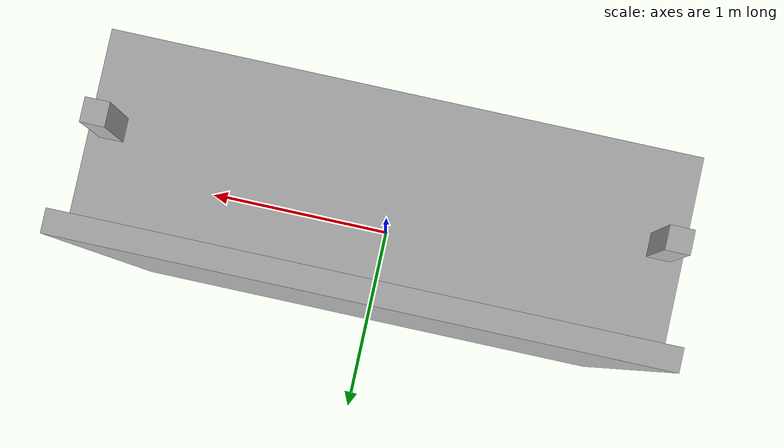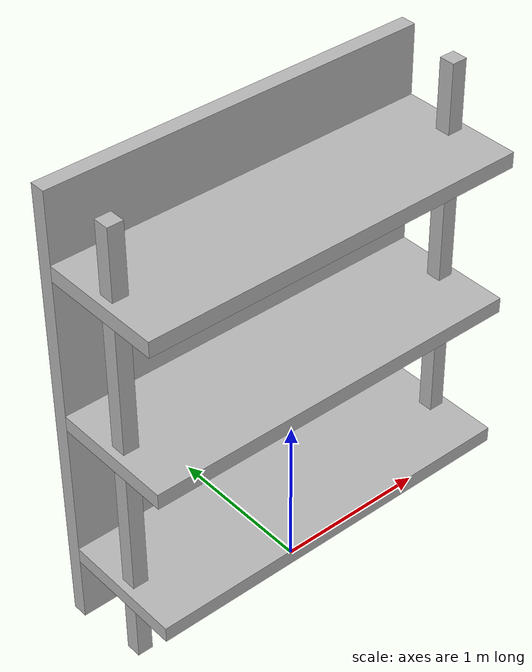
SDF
<?xml version="1.0"?>

<sdf version="1.10">

  <model name="shelf">

    <static>false</static>

    <link name="shelf_link">

      <!-- BACK FRAME                         -->

      <visual name="back_visual">

        <pose>0 0.45 1.5 0 0 0</pose>

        <geometry>
          <box>
            <size>2.5 0.1 3.0</size>
          </box>
        </geometry>

      </visual>

      <collision name="back_collision">

        <pose>0 0.45 1.5 0 0 0</pose>

        <geometry>
          <box>
            <size>2.5 0.1 3.0</size>
          </box>
        </geometry>

      </collision>

      <!-- SHELF 1                            -->

      <visual name="shelf_1_visual">

        <pose>0 0 0.5 0 0 0</pose>

        <geometry>
          <box>
            <size>2.5 0.8 0.1</size>
          </box>
        </geometry>

      </visual>

      <collision name="shelf_1_collision">

        <pose>0 0 0.5 0 0 0</pose>

        <geometry>
          <box>
            <size>2.5 0.8 0.1</size>
          </box>
        </geometry>

      </collision>

      <!-- SHELF 2                            -->

      <visual name="shelf_2_visual">

        <pose>0 0 1.5 0 0 0</pose>

        <geometry>
          <box>
            <size>2.5 0.8 0.1</size>
          </box>
        </geometry>

      </visual>

      <collision name="shelf_2_collision">

        <pose>0 0 1.5 0 0 0</pose>

        <geometry>
          <box>
            <size>2.5 0.8 0.1</size>
          </box>
        </geometry>

      </collision>

      <!-- SHELF 3                            -->

      <visual name="shelf_3_visual">

        <pose>0 0 2.5 0 0 0</pose>

        <geometry>
          <box>
            <size>2.5 0.8 0.1</size>
          </box>
        </geometry>

      </visual>

      <collision name="shelf_3_collision">

        <pose>0 0 2.5 0 0 0</pose>

        <geometry>
          <box>
            <size>2.5 0.8 0.1</size>
          </box>
        </geometry>

      </collision>

      <!-- LEFT POST                          -->

      <visual name="left_post_visual">

        <pose>-1.15 0 1.5 0 0 0</pose>

        <geometry>
          <box>
            <size>0.1 0.1 3.0</size>
          </box>
        </geometry>

      </visual>

      <collision name="left_post_collision">

        <pose>-1.15 0 1.5 0 0 0</pose>

        <geometry>
          <box>
            <size>0.1 0.1 3.0</size>
          </box>
        </geometry>

      </collision>

      <!-- RIGHT POST                         -->

      <visual name="right_post_visual">

        <pose>1.15 0 1.5 0 0 0</pose>

        <geometry>
          <box>
            <size>0.1 0.1 3.0</size>
          </box>
        </geometry>

      </visual>

      <collision name="right_post_collision">

        <pose>1.15 0 1.5 0 0 0</pose>

        <geometry>
          <box>
            <size>0.1 0.1 3.0</size>
          </box>
        </geometry>

      </collision>

    </link>

  </model>

</sdf>
